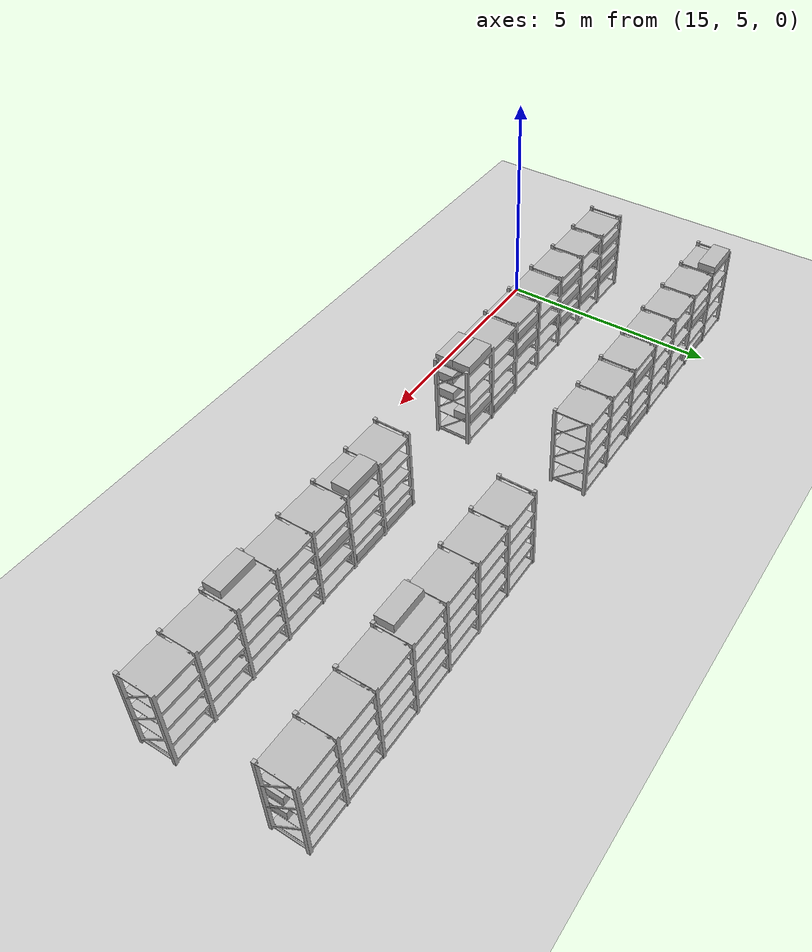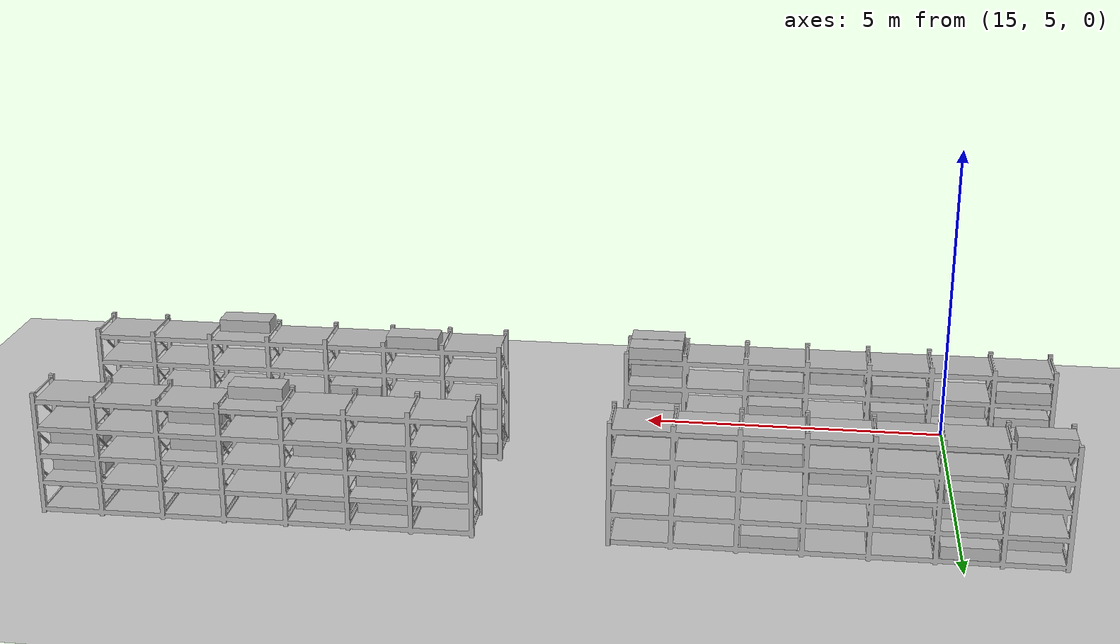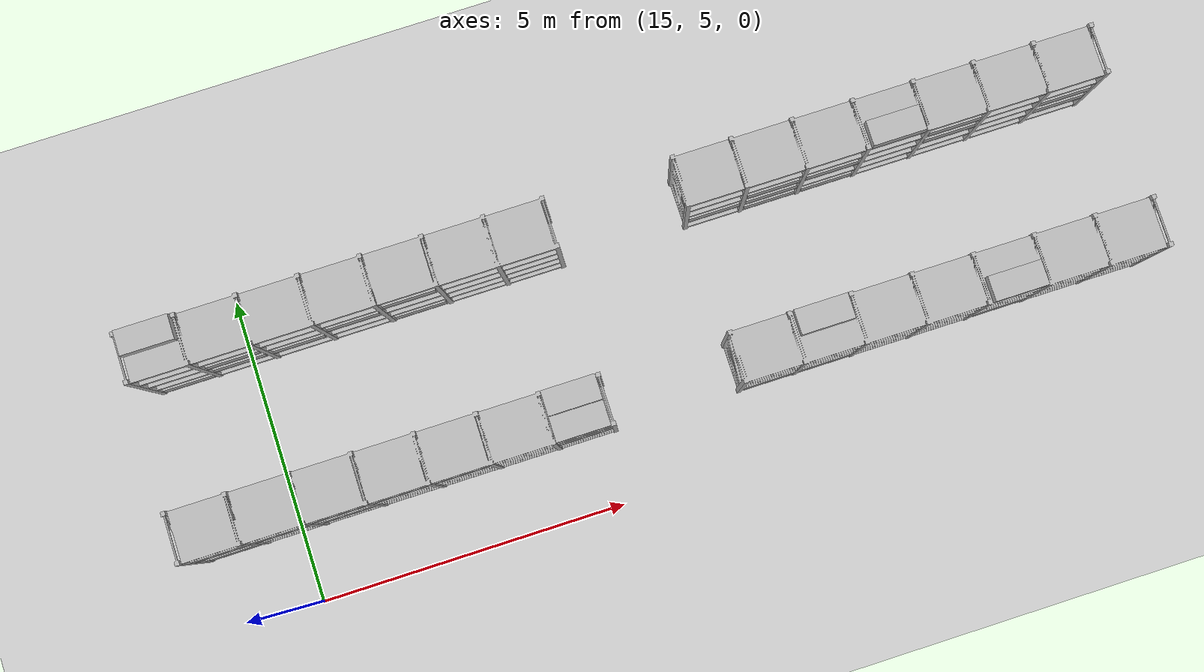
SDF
<sdf version="1.6">
 <world name="default">
  <model name="ground_plane">
   <static>1</static>
   <link name="link">
    <collision name="collision">
     <geometry><plane><normal>0 0 1</normal><size>100 100</size></plane></geometry>
     <surface><friction><ode><mu>100</mu><mu2>50</mu2></ode></friction></surface>
    </collision>
    <visual name="visual">
     <cast_shadows>0</cast_shadows>
     <geometry><plane><normal>0 0 1</normal><size>100 100</size></plane></geometry>
     <material>
      <script><uri>file://media/materials/scripts/gazebo.material</uri><name>Gazebo/Grey</name></script>
     </material>
    </visual>
   </link>
  </model>
  <include>
   <name>rack_B4_0</name>
   <uri>model://warehouse_rack_5lvl_7bay</uri>
   <pose>25.662 6.5523 0 0 0 1.5708</pose>
  </include>
  <model name="box_B_089">
   <pose>26.634 6.3473 0.202 0 0 1.5708</pose>
   <link name="link">
    <inertial>
     <mass>4.0</mass>
     <inertia><ixx>0.25417</ixx><iyy>0.06667</iyy><izz>0.29417</izz><ixy>0</ixy><ixz>0</ixz><iyz>0</iyz></inertia>
    </inertial>
    <collision name="collision">
     <geometry><box><size>0.4 0.85 0.2</size></box></geometry>
     <surface><friction><ode><mu>1.0</mu><mu2>1.0</mu2></ode></friction></surface>
    </collision>
    <visual name="visual">
     <cast_shadows>0</cast_shadows>
     <geometry><box><size>0.4 0.85 0.2</size></box></geometry>
     <material>
      <script>
       <uri>model://labeled_boxes/materials/scripts</uri>
       <uri>model://labeled_boxes/materials/textures</uri>
       <name>LabeledBox/B-089</name>
      </script>
     </material>
    </visual>
   </link>
  </model>
  <model name="box_B_090">
   <pose>26.634 6.3473 2.002 0 0 1.5708</pose>
   <link name="link">
    <inertial>
     <mass>4.0</mass>
     <inertia><ixx>0.25417</ixx><iyy>0.06667</iyy><izz>0.29417</izz><ixy>0</ixy><ixz>0</ixz><iyz>0</iyz></inertia>
    </inertial>
    <collision name="collision">
     <geometry><box><size>0.4 0.85 0.2</size></box></geometry>
     <surface><friction><ode><mu>1.0</mu><mu2>1.0</mu2></ode></friction></surface>
    </collision>
    <visual name="visual">
     <cast_shadows>0</cast_shadows>
     <geometry><box><size>0.4 0.85 0.2</size></box></geometry>
     <material>
      <script>
       <uri>model://labeled_boxes/materials/scripts</uri>
       <uri>model://labeled_boxes/materials/textures</uri>
       <name>LabeledBox/B-090</name>
      </script>
     </material>
    </visual>
   </link>
  </model>
  <model name="box_B_091">
   <pose>24.691 6.7573 1.102 0 0 1.5708</pose>
   <link name="link">
    <inertial>
     <mass>4.0</mass>
     <inertia><ixx>0.25417</ixx><iyy>0.06667</iyy><izz>0.29417</izz><ixy>0</ixy><ixz>0</ixz><iyz>0</iyz></inertia>
    </inertial>
    <collision name="collision">
     <geometry><box><size>0.4 0.85 0.2</size></box></geometry>
     <surface><friction><ode><mu>1.0</mu><mu2>1.0</mu2></ode></friction></surface>
    </collision>
    <visual name="visual">
     <cast_shadows>0</cast_shadows>
     <geometry><box><size>0.4 0.85 0.2</size></box></geometry>
     <material>
      <script>
       <uri>model://labeled_boxes/materials/scripts</uri>
       <uri>model://labeled_boxes/materials/textures</uri>
       <name>LabeledBox/B-091</name>
      </script>
     </material>
    </visual>
   </link>
  </model>
  <model name="box_B_092">
   <pose>23.72 6.3473 0.202 0 0 1.5708</pose>
   <link name="link">
    <inertial>
     <mass>4.0</mass>
     <inertia><ixx>0.25417</ixx><iyy>0.06667</iyy><izz>0.29417</izz><ixy>0</ixy><ixz>0</ixz><iyz>0</iyz></inertia>
    </inertial>
    <collision name="collision">
     <geometry><box><size>0.4 0.85 0.2</size></box></geometry>
     <surface><friction><ode><mu>1.0</mu><mu2>1.0</mu2></ode></friction></surface>
    </collision>
    <visual name="visual">
     <cast_shadows>0</cast_shadows>
     <geometry><box><size>0.4 0.85 0.2</size></box></geometry>
     <material>
      <script>
       <uri>model://labeled_boxes/materials/scripts</uri>
       <uri>model://labeled_boxes/materials/textures</uri>
       <name>LabeledBox/B-092</name>
      </script>
     </material>
    </visual>
   </link>
  </model>
  <model name="box_B_093">
   <pose>23.72 6.7573 0.202 0 0 1.5708</pose>
   <link name="link">
    <inertial>
     <mass>4.0</mass>
     <inertia><ixx>0.25417</ixx><iyy>0.06667</iyy><izz>0.29417</izz><ixy>0</ixy><ixz>0</ixz><iyz>0</iyz></inertia>
    </inertial>
    <collision name="collision">
     <geometry><box><size>0.4 0.85 0.2</size></box></geometry>
     <surface><friction><ode><mu>1.0</mu><mu2>1.0</mu2></ode></friction></surface>
    </collision>
    <visual name="visual">
     <cast_shadows>0</cast_shadows>
     <geometry><box><size>0.4 0.85 0.2</size></box></geometry>
     <material>
      <script>
       <uri>model://labeled_boxes/materials/scripts</uri>
       <uri>model://labeled_boxes/materials/textures</uri>
       <name>LabeledBox/B-093</name>
      </script>
     </material>
    </visual>
   </link>
  </model>
  <model name="box_B_094">
   <pose>23.72 6.7573 2.002 0 0 1.5708</pose>
   <link name="link">
    <inertial>
     <mass>4.0</mass>
     <inertia><ixx>0.25417</ixx><iyy>0.06667</iyy><izz>0.29417</izz><ixy>0</ixy><ixz>0</ixz><iyz>0</iyz></inertia>
    </inertial>
    <collision name="collision">
     <geometry><box><size>0.4 0.85 0.2</size></box></geometry>
     <surface><friction><ode><mu>1.0</mu><mu2>1.0</mu2></ode></friction></surface>
    </collision>
    <visual name="visual">
     <cast_shadows>0</cast_shadows>
     <geometry><box><size>0.4 0.85 0.2</size></box></geometry>
     <material>
      <script>
       <uri>model://labeled_boxes/materials/scripts</uri>
       <uri>model://labeled_boxes/materials/textures</uri>
       <name>LabeledBox/B-094</name>
      </script>
     </material>
    </visual>
   </link>
  </model>
  <model name="box_B_095">
   <pose>22.766 6.3473 0.202 0 0 1.5708</pose>
   <link name="link">
    <inertial>
     <mass>4.0</mass>
     <inertia><ixx>0.25417</ixx><iyy>0.06667</iyy><izz>0.29417</izz><ixy>0</ixy><ixz>0</ixz><iyz>0</iyz></inertia>
    </inertial>
    <collision name="collision">
     <geometry><box><size>0.4 0.85 0.2</size></box></geometry>
     <surface><friction><ode><mu>1.0</mu><mu2>1.0</mu2></ode></friction></surface>
    </collision>
    <visual name="visual">
     <cast_shadows>0</cast_shadows>
     <geometry><box><size>0.4 0.85 0.2</size></box></geometry>
     <material>
      <script>
       <uri>model://labeled_boxes/materials/scripts</uri>
       <uri>model://labeled_boxes/materials/textures</uri>
       <name>LabeledBox/B-095</name>
      </script>
     </material>
    </visual>
   </link>
  </model>
  <model name="box_B_096">
   <pose>22.766 6.7573 0.202 0 0 1.5708</pose>
   <link name="link">
    <inertial>
     <mass>4.0</mass>
     <inertia><ixx>0.25417</ixx><iyy>0.06667</iyy><izz>0.29417</izz><ixy>0</ixy><ixz>0</ixz><iyz>0</iyz></inertia>
    </inertial>
    <collision name="collision">
     <geometry><box><size>0.4 0.85 0.2</size></box></geometry>
     <surface><friction><ode><mu>1.0</mu><mu2>1.0</mu2></ode></friction></surface>
    </collision>
    <visual name="visual">
     <cast_shadows>0</cast_shadows>
     <geometry><box><size>0.4 0.85 0.2</size></box></geometry>
     <material>
      <script>
       <uri>model://labeled_boxes/materials/scripts</uri>
       <uri>model://labeled_boxes/materials/textures</uri>
       <name>LabeledBox/B-096</name>
      </script>
     </material>
    </visual>
   </link>
  </model>
  <include>
   <name>rack_B4_1</name>
   <uri>model://warehouse_rack_5lvl_7bay</uri>
   <pose>16.862 6.5523 0 0 0 1.5708</pose>
  </include>
  <model name="box_B_097">
   <pose>19.759 6.7573 0.652 0 0 1.5708</pose>
   <link name="link">
    <inertial>
     <mass>4.0</mass>
     <inertia><ixx>0.25417</ixx><iyy>0.06667</iyy><izz>0.29417</izz><ixy>0</ixy><ixz>0</ixz><iyz>0</iyz></inertia>
    </inertial>
    <collision name="collision">
     <geometry><box><size>0.4 0.85 0.2</size></box></geometry>
     <surface><friction><ode><mu>1.0</mu><mu2>1.0</mu2></ode></friction></surface>
    </collision>
    <visual name="visual">
     <cast_shadows>0</cast_shadows>
     <geometry><box><size>0.4 0.85 0.2</size></box></geometry>
     <material>
      <script>
       <uri>model://labeled_boxes/materials/scripts</uri>
       <uri>model://labeled_boxes/materials/textures</uri>
       <name>LabeledBox/B-097</name>
      </script>
     </material>
    </visual>
   </link>
  </model>
  <model name="box_B_098">
   <pose>19.759 6.3473 1.102 0 0 1.5708</pose>
   <link name="link">
    <inertial>
     <mass>4.0</mass>
     <inertia><ixx>0.25417</ixx><iyy>0.06667</iyy><izz>0.29417</izz><ixy>0</ixy><ixz>0</ixz><iyz>0</iyz></inertia>
    </inertial>
    <collision name="collision">
     <geometry><box><size>0.4 0.85 0.2</size></box></geometry>
     <surface><friction><ode><mu>1.0</mu><mu2>1.0</mu2></ode></friction></surface>
    </collision>
    <visual name="visual">
     <cast_shadows>0</cast_shadows>
     <geometry><box><size>0.4 0.85 0.2</size></box></geometry>
     <material>
      <script>
       <uri>model://labeled_boxes/materials/scripts</uri>
       <uri>model://labeled_boxes/materials/textures</uri>
       <name>LabeledBox/B-098</name>
      </script>
     </material>
    </visual>
   </link>
  </model>
  <model name="box_B_099">
   <pose>19.759 6.3473 1.552 0 0 1.5708</pose>
   <link name="link">
    <inertial>
     <mass>4.0</mass>
     <inertia><ixx>0.25417</ixx><iyy>0.06667</iyy><izz>0.29417</izz><ixy>0</ixy><ixz>0</ixz><iyz>0</iyz></inertia>
    </inertial>
    <collision name="collision">
     <geometry><box><size>0.4 0.85 0.2</size></box></geometry>
     <surface><friction><ode><mu>1.0</mu><mu2>1.0</mu2></ode></friction></surface>
    </collision>
    <visual name="visual">
     <cast_shadows>0</cast_shadows>
     <geometry><box><size>0.4 0.85 0.2</size></box></geometry>
     <material>
      <script>
       <uri>model://labeled_boxes/materials/scripts</uri>
       <uri>model://labeled_boxes/materials/textures</uri>
       <name>LabeledBox/B-099</name>
      </script>
     </material>
    </visual>
   </link>
  </model>
  <model name="box_B_100">
   <pose>19.759 6.3473 2.002 0 0 1.5708</pose>
   <link name="link">
    <inertial>
     <mass>4.0</mass>
     <inertia><ixx>0.25417</ixx><iyy>0.06667</iyy><izz>0.29417</izz><ixy>0</ixy><ixz>0</ixz><iyz>0</iyz></inertia>
    </inertial>
    <collision name="collision">
     <geometry><box><size>0.4 0.85 0.2</size></box></geometry>
     <surface><friction><ode><mu>1.0</mu><mu2>1.0</mu2></ode></friction></surface>
    </collision>
    <visual name="visual">
     <cast_shadows>0</cast_shadows>
     <geometry><box><size>0.4 0.85 0.2</size></box></geometry>
     <material>
      <script>
       <uri>model://labeled_boxes/materials/scripts</uri>
       <uri>model://labeled_boxes/materials/textures</uri>
       <name>LabeledBox/B-100</name>
      </script>
     </material>
    </visual>
   </link>
  </model>
  <model name="box_B_101">
   <pose>19.759 6.7573 2.002 0 0 1.5708</pose>
   <link name="link">
    <inertial>
     <mass>4.0</mass>
     <inertia><ixx>0.25417</ixx><iyy>0.06667</iyy><izz>0.29417</izz><ixy>0</ixy><ixz>0</ixz><iyz>0</iyz></inertia>
    </inertial>
    <collision name="collision">
     <geometry><box><size>0.4 0.85 0.2</size></box></geometry>
     <surface><friction><ode><mu>1.0</mu><mu2>1.0</mu2></ode></friction></surface>
    </collision>
    <visual name="visual">
     <cast_shadows>0</cast_shadows>
     <geometry><box><size>0.4 0.85 0.2</size></box></geometry>
     <material>
      <script>
       <uri>model://labeled_boxes/materials/scripts</uri>
       <uri>model://labeled_boxes/materials/textures</uri>
       <name>LabeledBox/B-101</name>
      </script>
     </material>
    </visual>
   </link>
  </model>
  <model name="box_B_102">
   <pose>18.805 6.7573 0.202 0 0 1.5708</pose>
   <link name="link">
    <inertial>
     <mass>4.0</mass>
     <inertia><ixx>0.25417</ixx><iyy>0.06667</iyy><izz>0.29417</izz><ixy>0</ixy><ixz>0</ixz><iyz>0</iyz></inertia>
    </inertial>
    <collision name="collision">
     <geometry><box><size>0.4 0.85 0.2</size></box></geometry>
     <surface><friction><ode><mu>1.0</mu><mu2>1.0</mu2></ode></friction></surface>
    </collision>
    <visual name="visual">
     <cast_shadows>0</cast_shadows>
     <geometry><box><size>0.4 0.85 0.2</size></box></geometry>
     <material>
      <script>
       <uri>model://labeled_boxes/materials/scripts</uri>
       <uri>model://labeled_boxes/materials/textures</uri>
       <name>LabeledBox/B-102</name>
      </script>
     </material>
    </visual>
   </link>
  </model>
  <model name="box_B_103">
   <pose>17.834 6.7573 1.102 0 0 1.5708</pose>
   <link name="link">
    <inertial>
     <mass>4.0</mass>
     <inertia><ixx>0.25417</ixx><iyy>0.06667</iyy><izz>0.29417</izz><ixy>0</ixy><ixz>0</ixz><iyz>0</iyz></inertia>
    </inertial>
    <collision name="collision">
     <geometry><box><size>0.4 0.85 0.2</size></box></geometry>
     <surface><friction><ode><mu>1.0</mu><mu2>1.0</mu2></ode></friction></surface>
    </collision>
    <visual name="visual">
     <cast_shadows>0</cast_shadows>
     <geometry><box><size>0.4 0.85 0.2</size></box></geometry>
     <material>
      <script>
       <uri>model://labeled_boxes/materials/scripts</uri>
       <uri>model://labeled_boxes/materials/textures</uri>
       <name>LabeledBox/B-103</name>
      </script>
     </material>
    </visual>
   </link>
  </model>
  <model name="box_B_104">
   <pose>17.834 6.3473 1.552 0 0 1.5708</pose>
   <link name="link">
    <inertial>
     <mass>4.0</mass>
     <inertia><ixx>0.25417</ixx><iyy>0.06667</iyy><izz>0.29417</izz><ixy>0</ixy><ixz>0</ixz><iyz>0</iyz></inertia>
    </inertial>
    <collision name="collision">
     <geometry><box><size>0.4 0.85 0.2</size></box></geometry>
     <surface><friction><ode><mu>1.0</mu><mu2>1.0</mu2></ode></friction></surface>
    </collision>
    <visual name="visual">
     <cast_shadows>0</cast_shadows>
     <geometry><box><size>0.4 0.85 0.2</size></box></geometry>
     <material>
      <script>
       <uri>model://labeled_boxes/materials/scripts</uri>
       <uri>model://labeled_boxes/materials/textures</uri>
       <name>LabeledBox/B-104</name>
      </script>
     </material>
    </visual>
   </link>
  </model>
  <model name="box_B_105">
   <pose>17.834 6.7573 1.552 0 0 1.5708</pose>
   <link name="link">
    <inertial>
     <mass>4.0</mass>
     <inertia><ixx>0.25417</ixx><iyy>0.06667</iyy><izz>0.29417</izz><ixy>0</ixy><ixz>0</ixz><iyz>0</iyz></inertia>
    </inertial>
    <collision name="collision">
     <geometry><box><size>0.4 0.85 0.2</size></box></geometry>
     <surface><friction><ode><mu>1.0</mu><mu2>1.0</mu2></ode></friction></surface>
    </collision>
    <visual name="visual">
     <cast_shadows>0</cast_shadows>
     <geometry><box><size>0.4 0.85 0.2</size></box></geometry>
     <material>
      <script>
       <uri>model://labeled_boxes/materials/scripts</uri>
       <uri>model://labeled_boxes/materials/textures</uri>
       <name>LabeledBox/B-105</name>
      </script>
     </material>
    </visual>
   </link>
  </model>
  <model name="box_B_106">
   <pose>16.862 6.3473 1.552 0 0 1.5708</pose>
   <link name="link">
    <inertial>
     <mass>4.0</mass>
     <inertia><ixx>0.25417</ixx><iyy>0.06667</iyy><izz>0.29417</izz><ixy>0</ixy><ixz>0</ixz><iyz>0</iyz></inertia>
    </inertial>
    <collision name="collision">
     <geometry><box><size>0.4 0.85 0.2</size></box></geometry>
     <surface><friction><ode><mu>1.0</mu><mu2>1.0</mu2></ode></friction></surface>
    </collision>
    <visual name="visual">
     <cast_shadows>0</cast_shadows>
     <geometry><box><size>0.4 0.85 0.2</size></box></geometry>
     <material>
      <script>
       <uri>model://labeled_boxes/materials/scripts</uri>
       <uri>model://labeled_boxes/materials/textures</uri>
       <name>LabeledBox/B-106</name>
      </script>
     </material>
    </visual>
   </link>
  </model>
  <model name="box_B_107">
   <pose>15.891 6.3473 0.652 0 0 1.5708</pose>
   <link name="link">
    <inertial>
     <mass>4.0</mass>
     <inertia><ixx>0.25417</ixx><iyy>0.06667</iyy><izz>0.29417</izz><ixy>0</ixy><ixz>0</ixz><iyz>0</iyz></inertia>
    </inertial>
    <collision name="collision">
     <geometry><box><size>0.4 0.85 0.2</size></box></geometry>
     <surface><friction><ode><mu>1.0</mu><mu2>1.0</mu2></ode></friction></surface>
    </collision>
    <visual name="visual">
     <cast_shadows>0</cast_shadows>
     <geometry><box><size>0.4 0.85 0.2</size></box></geometry>
     <material>
      <script>
       <uri>model://labeled_boxes/materials/scripts</uri>
       <uri>model://labeled_boxes/materials/textures</uri>
       <name>LabeledBox/B-107</name>
      </script>
     </material>
    </visual>
   </link>
  </model>
  <model name="box_B_108">
   <pose>15.891 6.7573 0.652 0 0 1.5708</pose>
   <link name="link">
    <inertial>
     <mass>4.0</mass>
     <inertia><ixx>0.25417</ixx><iyy>0.06667</iyy><izz>0.29417</izz><ixy>0</ixy><ixz>0</ixz><iyz>0</iyz></inertia>
    </inertial>
    <collision name="collision">
     <geometry><box><size>0.4 0.85 0.2</size></box></geometry>
     <surface><friction><ode><mu>1.0</mu><mu2>1.0</mu2></ode></friction></surface>
    </collision>
    <visual name="visual">
     <cast_shadows>0</cast_shadows>
     <geometry><box><size>0.4 0.85 0.2</size></box></geometry>
     <material>
      <script>
       <uri>model://labeled_boxes/materials/scripts</uri>
       <uri>model://labeled_boxes/materials/textures</uri>
       <name>LabeledBox/B-108</name>
      </script>
     </material>
    </visual>
   </link>
  </model>
  <model name="box_B_109">
   <pose>15.891 6.7573 1.102 0 0 1.5708</pose>
   <link name="link">
    <inertial>
     <mass>4.0</mass>
     <inertia><ixx>0.25417</ixx><iyy>0.06667</iyy><izz>0.29417</izz><ixy>0</ixy><ixz>0</ixz><iyz>0</iyz></inertia>
    </inertial>
    <collision name="collision">
     <geometry><box><size>0.4 0.85 0.2</size></box></geometry>
     <surface><friction><ode><mu>1.0</mu><mu2>1.0</mu2></ode></friction></surface>
    </collision>
    <visual name="visual">
     <cast_shadows>0</cast_shadows>
     <geometry><box><size>0.4 0.85 0.2</size></box></geometry>
     <material>
      <script>
       <uri>model://labeled_boxes/materials/scripts</uri>
       <uri>model://labeled_boxes/materials/textures</uri>
       <name>LabeledBox/B-109</name>
      </script>
     </material>
    </visual>
   </link>
  </model>
  <model name="box_B_110">
   <pose>15.891 6.3473 1.552 0 0 1.5708</pose>
   <link name="link">
    <inertial>
     <mass>4.0</mass>
     <inertia><ixx>0.25417</ixx><iyy>0.06667</iyy><izz>0.29417</izz><ixy>0</ixy><ixz>0</ixz><iyz>0</iyz></inertia>
    </inertial>
    <collision name="collision">
     <geometry><box><size>0.4 0.85 0.2</size></box></geometry>
     <surface><friction><ode><mu>1.0</mu><mu2>1.0</mu2></ode></friction></surface>
    </collision>
    <visual name="visual">
     <cast_shadows>0</cast_shadows>
     <geometry><box><size>0.4 0.85 0.2</size></box></geometry>
     <material>
      <script>
       <uri>model://labeled_boxes/materials/scripts</uri>
       <uri>model://labeled_boxes/materials/textures</uri>
       <name>LabeledBox/B-110</name>
      </script>
     </material>
    </visual>
   </link>
  </model>
  <model name="box_B_111">
   <pose>15.891 6.7573 1.552 0 0 1.5708</pose>
   <link name="link">
    <inertial>
     <mass>4.0</mass>
     <inertia><ixx>0.25417</ixx><iyy>0.06667</iyy><izz>0.29417</izz><ixy>0</ixy><ixz>0</ixz><iyz>0</iyz></inertia>
    </inertial>
    <collision name="collision">
     <geometry><box><size>0.4 0.85 0.2</size></box></geometry>
     <surface><friction><ode><mu>1.0</mu><mu2>1.0</mu2></ode></friction></surface>
    </collision>
    <visual name="visual">
     <cast_shadows>0</cast_shadows>
     <geometry><box><size>0.4 0.85 0.2</size></box></geometry>
     <material>
      <script>
       <uri>model://labeled_boxes/materials/scripts</uri>
       <uri>model://labeled_boxes/materials/textures</uri>
       <name>LabeledBox/B-111</name>
      </script>
     </material>
    </visual>
   </link>
  </model>
  <model name="box_B_112">
   <pose>14.92 6.7573 0.652 0 0 1.5708</pose>
   <link name="link">
    <inertial>
     <mass>4.0</mass>
     <inertia><ixx>0.25417</ixx><iyy>0.06667</iyy><izz>0.29417</izz><ixy>0</ixy><ixz>0</ixz><iyz>0</iyz></inertia>
    </inertial>
    <collision name="collision">
     <geometry><box><size>0.4 0.85 0.2</size></box></geometry>
     <surface><friction><ode><mu>1.0</mu><mu2>1.0</mu2></ode></friction></surface>
    </collision>
    <visual name="visual">
     <cast_shadows>0</cast_shadows>
     <geometry><box><size>0.4 0.85 0.2</size></box></geometry>
     <material>
      <script>
       <uri>model://labeled_boxes/materials/scripts</uri>
       <uri>model://labeled_boxes/materials/textures</uri>
       <name>LabeledBox/B-112</name>
      </script>
     </material>
    </visual>
   </link>
  </model>
  <model name="box_B_113">
   <pose>14.92 6.3473 1.102 0 0 1.5708</pose>
   <link name="link">
    <inertial>
     <mass>4.0</mass>
     <inertia><ixx>0.25417</ixx><iyy>0.06667</iyy><izz>0.29417</izz><ixy>0</ixy><ixz>0</ixz><iyz>0</iyz></inertia>
    </inertial>
    <collision name="collision">
     <geometry><box><size>0.4 0.85 0.2</size></box></geometry>
     <surface><friction><ode><mu>1.0</mu><mu2>1.0</mu2></ode></friction></surface>
    </collision>
    <visual name="visual">
     <cast_shadows>0</cast_shadows>
     <geometry><box><size>0.4 0.85 0.2</size></box></geometry>
     <material>
      <script>
       <uri>model://labeled_boxes/materials/scripts</uri>
       <uri>model://labeled_boxes/materials/textures</uri>
       <name>LabeledBox/B-113</name>
      </script>
     </material>
    </visual>
   </link>
  </model>
  <model name="box_B_114">
   <pose>13.966 6.3473 0.202 0 0 1.5708</pose>
   <link name="link">
    <inertial>
     <mass>4.0</mass>
     <inertia><ixx>0.25417</ixx><iyy>0.06667</iyy><izz>0.29417</izz><ixy>0</ixy><ixz>0</ixz><iyz>0</iyz></inertia>
    </inertial>
    <collision name="collision">
     <geometry><box><size>0.4 0.85 0.2</size></box></geometry>
     <surface><friction><ode><mu>1.0</mu><mu2>1.0</mu2></ode></friction></surface>
    </collision>
    <visual name="visual">
     <cast_shadows>0</cast_shadows>
     <geometry><box><size>0.4 0.85 0.2</size></box></geometry>
     <material>
      <script>
       <uri>model://labeled_boxes/materials/scripts</uri>
       <uri>model://labeled_boxes/materials/textures</uri>
       <name>LabeledBox/B-114</name>
      </script>
     </material>
    </visual>
   </link>
  </model>
  <model name="box_B_115">
   <pose>13.966 6.7573 0.652 0 0 1.5708</pose>
   <link name="link">
    <inertial>
     <mass>4.0</mass>
     <inertia><ixx>0.25417</ixx><iyy>0.06667</iyy><izz>0.29417</izz><ixy>0</ixy><ixz>0</ixz><iyz>0</iyz></inertia>
    </inertial>
    <collision name="collision">
     <geometry><box><size>0.4 0.85 0.2</size></box></geometry>
     <surface><friction><ode><mu>1.0</mu><mu2>1.0</mu2></ode></friction></surface>
    </collision>
    <visual name="visual">
     <cast_shadows>0</cast_shadows>
     <geometry><box><size>0.4 0.85 0.2</size></box></geometry>
     <material>
      <script>
       <uri>model://labeled_boxes/materials/scripts</uri>
       <uri>model://labeled_boxes/materials/textures</uri>
       <name>LabeledBox/B-115</name>
      </script>
     </material>
    </visual>
   </link>
  </model>
  <model name="box_B_116">
   <pose>13.966 6.3473 1.102 0 0 1.5708</pose>
   <link name="link">
    <inertial>
     <mass>4.0</mass>
     <inertia><ixx>0.25417</ixx><iyy>0.06667</iyy><izz>0.29417</izz><ixy>0</ixy><ixz>0</ixz><iyz>0</iyz></inertia>
    </inertial>
    <collision name="collision">
     <geometry><box><size>0.4 0.85 0.2</size></box></geometry>
     <surface><friction><ode><mu>1.0</mu><mu2>1.0</mu2></ode></friction></surface>
    </collision>
    <visual name="visual">
     <cast_shadows>0</cast_shadows>
     <geometry><box><size>0.4 0.85 0.2</size></box></geometry>
     <material>
      <script>
       <uri>model://labeled_boxes/materials/scripts</uri>
       <uri>model://labeled_boxes/materials/textures</uri>
       <name>LabeledBox/B-116</name>
      </script>
     </material>
    </visual>
   </link>
  </model>
  <model name="box_B_117">
   <pose>13.966 6.7573 1.102 0 0 1.5708</pose>
   <link name="link">
    <inertial>
     <mass>4.0</mass>
     <inertia><ixx>0.25417</ixx><iyy>0.06667</iyy><izz>0.29417</izz><ixy>0</ixy><ixz>0</ixz><iyz>0</iyz></inertia>
    </inertial>
    <collision name="collision">
     <geometry><box><size>0.4 0.85 0.2</size></box></geometry>
     <surface><friction><ode><mu>1.0</mu><mu2>1.0</mu2></ode></friction></surface>
    </collision>
    <visual name="visual">
     <cast_shadows>0</cast_shadows>
     <geometry><box><size>0.4 0.85 0.2</size></box></geometry>
     <material>
      <script>
       <uri>model://labeled_boxes/materials/scripts</uri>
       <uri>model://labeled_boxes/materials/textures</uri>
       <name>LabeledBox/B-117</name>
      </script>
     </material>
    </visual>
   </link>
  </model>
  <model name="box_B_118">
   <pose>13.966 6.7573 1.552 0 0 1.5708</pose>
   <link name="link">
    <inertial>
     <mass>4.0</mass>
     <inertia><ixx>0.25417</ixx><iyy>0.06667</iyy><izz>0.29417</izz><ixy>0</ixy><ixz>0</ixz><iyz>0</iyz></inertia>
    </inertial>
    <collision name="collision">
     <geometry><box><size>0.4 0.85 0.2</size></box></geometry>
     <surface><friction><ode><mu>1.0</mu><mu2>1.0</mu2></ode></friction></surface>
    </collision>
    <visual name="visual">
     <cast_shadows>0</cast_shadows>
     <geometry><box><size>0.4 0.85 0.2</size></box></geometry>
     <material>
      <script>
       <uri>model://labeled_boxes/materials/scripts</uri>
       <uri>model://labeled_boxes/materials/textures</uri>
       <name>LabeledBox/B-118</name>
      </script>
     </material>
    </visual>
   </link>
  </model>
  <include>
   <name>rack_B5_0</name>
   <uri>model://warehouse_rack_5lvl_7bay</uri>
   <pose>25.662 9.3523 0 0 0 1.5708</pose>
  </include>
  <model name="box_B_119">
   <pose>28.559 9.1473 0.652 0 0 1.5708</pose>
   <link name="link">
    <inertial>
     <mass>4.0</mass>
     <inertia><ixx>0.25417</ixx><iyy>0.06667</iyy><izz>0.29417</izz><ixy>0</ixy><ixz>0</ixz><iyz>0</iyz></inertia>
    </inertial>
    <collision name="collision">
     <geometry><box><size>0.4 0.85 0.2</size></box></geometry>
     <surface><friction><ode><mu>1.0</mu><mu2>1.0</mu2></ode></friction></surface>
    </collision>
    <visual name="visual">
     <cast_shadows>0</cast_shadows>
     <geometry><box><size>0.4 0.85 0.2</size></box></geometry>
     <material>
      <script>
       <uri>model://labeled_boxes/materials/scripts</uri>
       <uri>model://labeled_boxes/materials/textures</uri>
       <name>LabeledBox/B-119</name>
      </script>
     </material>
    </visual>
   </link>
  </model>
  <model name="box_B_120">
   <pose>28.559 9.1473 1.102 0 0 1.5708</pose>
   <link name="link">
    <inertial>
     <mass>4.0</mass>
     <inertia><ixx>0.25417</ixx><iyy>0.06667</iyy><izz>0.29417</izz><ixy>0</ixy><ixz>0</ixz><iyz>0</iyz></inertia>
    </inertial>
    <collision name="collision">
     <geometry><box><size>0.4 0.85 0.2</size></box></geometry>
     <surface><friction><ode><mu>1.0</mu><mu2>1.0</mu2></ode></friction></surface>
    </collision>
    <visual name="visual">
     <cast_shadows>0</cast_shadows>
     <geometry><box><size>0.4 0.85 0.2</size></box></geometry>
     <material>
      <script>
       <uri>model://labeled_boxes/materials/scripts</uri>
       <uri>model://labeled_boxes/materials/textures</uri>
       <name>LabeledBox/B-120</name>
      </script>
     </material>
    </visual>
   </link>
  </model>
  <model name="box_B_123">
   <pose>26.634 9.1473 1.102 0 0 1.5708</pose>
   <link name="link">
    <inertial>
     <mass>4.0</mass>
     <inertia><ixx>0.25417</ixx><iyy>0.06667</iyy><izz>0.29417</izz><ixy>0</ixy><ixz>0</ixz><iyz>0</iyz></inertia>
    </inertial>
    <collision name="collision">
     <geometry><box><size>0.4 0.85 0.2</size></box></geometry>
     <surface><friction><ode><mu>1.0</mu><mu2>1.0</mu2></ode></friction></surface>
    </collision>
    <visual name="visual">
     <cast_shadows>0</cast_shadows>
     <geometry><box><size>0.4 0.85 0.2</size></box></geometry>
     <material>
      <script>
       <uri>model://labeled_boxes/materials/scripts</uri>
       <uri>model://labeled_boxes/materials/textures</uri>
       <name>LabeledBox/B-123</name>
      </script>
     </material>
    </visual>
   </link>
  </model>
  <model name="box_B_124">
   <pose>26.634 9.1473 1.552 0 0 1.5708</pose>
   <link name="link">
    <inertial>
     <mass>4.0</mass>
     <inertia><ixx>0.25417</ixx><iyy>0.06667</iyy><izz>0.29417</izz><ixy>0</ixy><ixz>0</ixz><iyz>0</iyz></inertia>
    </inertial>
    <collision name="collision">
     <geometry><box><size>0.4 0.85 0.2</size></box></geometry>
     <surface><friction><ode><mu>1.0</mu><mu2>1.0</mu2></ode></friction></surface>
    </collision>
    <visual name="visual">
     <cast_shadows>0</cast_shadows>
     <geometry><box><size>0.4 0.85 0.2</size></box></geometry>
     <material>
      <script>
       <uri>model://labeled_boxes/materials/scripts</uri>
       <uri>model://labeled_boxes/materials/textures</uri>
       <name>LabeledBox/B-124</name>
      </script>
     </material>
    </visual>
   </link>
  </model>
  <model name="box_B_127">
   <pose>25.662 9.1473 2.002 0 0 1.5708</pose>
   <link name="link">
    <inertial>
     <mass>4.0</mass>
     <inertia><ixx>0.25417</ixx><iyy>0.06667</iyy><izz>0.29417</izz><ixy>0</ixy><ixz>0</ixz><iyz>0</iyz></inertia>
    </inertial>
    <collision name="collision">
     <geometry><box><size>0.4 0.85 0.2</size></box></geometry>
     <surface><friction><ode><mu>1.0</mu><mu2>1.0</mu2></ode></friction></surface>
    </collision>
    <visual name="visual">
     <cast_shadows>0</cast_shadows>
     <geometry><box><size>0.4 0.85 0.2</size></box></geometry>
     <material>
      <script>
       <uri>model://labeled_boxes/materials/scripts</uri>
       <uri>model://labeled_boxes/materials/textures</uri>
       <name>LabeledBox/B-127</name>
      </script>
     </material>
    </visual>
   </link>
  </model>
  <model name="box_B_128">
   <pose>24.691 9.1473 0.202 0 0 1.5708</pose>
   <link name="link">
    <inertial>
     <mass>4.0</mass>
     <inertia><ixx>0.25417</ixx><iyy>0.06667</iyy><izz>0.29417</izz><ixy>0</ixy><ixz>0</ixz><iyz>0</iyz></inertia>
    </inertial>
    <collision name="collision">
     <geometry><box><size>0.4 0.85 0.2</size></box></geometry>
     <surface><friction><ode><mu>1.0</mu><mu2>1.0</mu2></ode></friction></surface>
    </collision>
    <visual name="visual">
     <cast_shadows>0</cast_shadows>
     <geometry><box><size>0.4 0.85 0.2</size></box></geometry>
     <material>
      <script>
       <uri>model://labeled_boxes/materials/scripts</uri>
       <uri>model://labeled_boxes/materials/textures</uri>
       <name>LabeledBox/B-128</name>
      </script>
     </material>
    </visual>
   </link>
  </model>
  <model name="box_B_129">
   <pose>24.691 9.1473 1.102 0 0 1.5708</pose>
   <link name="link">
    <inertial>
     <mass>4.0</mass>
     <inertia><ixx>0.25417</ixx><iyy>0.06667</iyy><izz>0.29417</izz><ixy>0</ixy><ixz>0</ixz><iyz>0</iyz></inertia>
    </inertial>
    <collision name="collision">
     <geometry><box><size>0.4 0.85 0.2</size></box></geometry>
     <surface><friction><ode><mu>1.0</mu><mu2>1.0</mu2></ode></friction></surface>
    </collision>
    <visual name="visual">
     <cast_shadows>0</cast_shadows>
     <geometry><box><size>0.4 0.85 0.2</size></box></geometry>
     <material>
      <script>
       <uri>model://labeled_boxes/materials/scripts</uri>
       <uri>model://labeled_boxes/materials/textures</uri>
       <name>LabeledBox/B-129</name>
      </script>
     </material>
    </visual>
   </link>
  </model>
  <model name="box_B_130">
   <pose>23.72 9.1473 0.202 0 0 1.5708</pose>
   <link name="link">
    <inertial>
     <mass>4.0</mass>
     <inertia><ixx>0.25417</ixx><iyy>0.06667</iyy><izz>0.29417</izz><ixy>0</ixy><ixz>0</ixz><iyz>0</iyz></inertia>
    </inertial>
    <collision name="collision">
     <geometry><box><size>0.4 0.85 0.2</size></box></geometry>
     <surface><friction><ode><mu>1.0</mu><mu2>1.0</mu2></ode></friction></surface>
    </collision>
    <visual name="visual">
     <cast_shadows>0</cast_shadows>
     <geometry><box><size>0.4 0.85 0.2</size></box></geometry>
     <material>
      <script>
       <uri>model://labeled_boxes/materials/scripts</uri>
       <uri>model://labeled_boxes/materials/textures</uri>
       <name>LabeledBox/B-130</name>
      </script>
     </material>
    </visual>
   </link>
  </model>
  <model name="box_B_131">
   <pose>23.72 9.1473 0.652 0 0 1.5708</pose>
   <link name="link">
    <inertial>
     <mass>4.0</mass>
     <inertia><ixx>0.25417</ixx><iyy>0.06667</iyy><izz>0.29417</izz><ixy>0</ixy><ixz>0</ixz><iyz>0</iyz></inertia>
    </inertial>
    <collision name="collision">
     <geometry><box><size>0.4 0.85 0.2</size></box></geometry>
     <surface><friction><ode><mu>1.0</mu><mu2>1.0</mu2></ode></friction></surface>
    </collision>
    <visual name="visual">
     <cast_shadows>0</cast_shadows>
     <geometry><box><size>0.4 0.85 0.2</size></box></geometry>
     <material>
      <script>
       <uri>model://labeled_boxes/materials/scripts</uri>
       <uri>model://labeled_boxes/materials/textures</uri>
       <name>LabeledBox/B-131</name>
      </script>
     </material>
    </visual>
   </link>
  </model>
  <model name="box_B_133">
   <pose>23.72 9.1473 1.102 0 0 1.5708</pose>
   <link name="link">
    <inertial>
     <mass>4.0</mass>
     <inertia><ixx>0.25417</ixx><iyy>0.06667</iyy><izz>0.29417</izz><ixy>0</ixy><ixz>0</ixz><iyz>0</iyz></inertia>
    </inertial>
    <collision name="collision">
     <geometry><box><size>0.4 0.85 0.2</size></box></geometry>
     <surface><friction><ode><mu>1.0</mu><mu2>1.0</mu2></ode></friction></surface>
    </collision>
    <visual name="visual">
     <cast_shadows>0</cast_shadows>
     <geometry><box><size>0.4 0.85 0.2</size></box></geometry>
     <material>
      <script>
       <uri>model://labeled_boxes/materials/scripts</uri>
       <uri>model://labeled_boxes/materials/textures</uri>
       <name>LabeledBox/B-133</name>
      </script>
     </material>
    </visual>
   </link>
  </model>
  <model name="box_B_135">
   <pose>22.766 9.1473 0.652 0 0 1.5708</pose>
   <link name="link">
    <inertial>
     <mass>4.0</mass>
     <inertia><ixx>0.25417</ixx><iyy>0.06667</iyy><izz>0.29417</izz><ixy>0</ixy><ixz>0</ixz><iyz>0</iyz></inertia>
    </inertial>
    <collision name="collision">
     <geometry><box><size>0.4 0.85 0.2</size></box></geometry>
     <surface><friction><ode><mu>1.0</mu><mu2>1.0</mu2></ode></friction></surface>
    </collision>
    <visual name="visual">
     <cast_shadows>0</cast_shadows>
     <geometry><box><size>0.4 0.85 0.2</size></box></geometry>
     <material>
      <script>
       <uri>model://labeled_boxes/materials/scripts</uri>
       <uri>model://labeled_boxes/materials/textures</uri>
       <name>LabeledBox/B-135</name>
      </script>
     </material>
    </visual>
   </link>
  </model>
  <include>
   <name>rack_B5_1</name>
   <uri>model://warehouse_rack_5lvl_7bay</uri>
   <pose>16.862 9.3523 0 0 0 1.5708</pose>
  </include>
  <model name="box_B_139">
   <pose>17.834 9.1473 0.202 0 0 1.5708</pose>
   <link name="link">
    <inertial>
     <mass>4.0</mass>
     <inertia><ixx>0.25417</ixx><iyy>0.06667</iyy><izz>0.29417</izz><ixy>0</ixy><ixz>0</ixz><iyz>0</iyz></inertia>
    </inertial>
    <collision name="collision">
     <geometry><box><size>0.4 0.85 0.2</size></box></geometry>
     <surface><friction><ode><mu>1.0</mu><mu2>1.0</mu2></ode></friction></surface>
    </collision>
    <visual name="visual">
     <cast_shadows>0</cast_shadows>
     <geometry><box><size>0.4 0.85 0.2</size></box></geometry>
     <material>
      <script>
       <uri>model://labeled_boxes/materials/scripts</uri>
       <uri>model://labeled_boxes/materials/textures</uri>
       <name>LabeledBox/B-139</name>
      </script>
     </material>
    </visual>
   </link>
  </model>
  <model name="box_B_140">
   <pose>17.834 9.5573 0.202 0 0 1.5708</pose>
   <link name="link">
    <inertial>
     <mass>4.0</mass>
     <inertia><ixx>0.25417</ixx><iyy>0.06667</iyy><izz>0.29417</izz><ixy>0</ixy><ixz>0</ixz><iyz>0</iyz></inertia>
    </inertial>
    <collision name="collision">
     <geometry><box><size>0.4 0.85 0.2</size></box></geometry>
     <surface><friction><ode><mu>1.0</mu><mu2>1.0</mu2></ode></friction></surface>
    </collision>
    <visual name="visual">
     <cast_shadows>0</cast_shadows>
     <geometry><box><size>0.4 0.85 0.2</size></box></geometry>
     <material>
      <script>
       <uri>model://labeled_boxes/materials/scripts</uri>
       <uri>model://labeled_boxes/materials/textures</uri>
       <name>LabeledBox/B-140</name>
      </script>
     </material>
    </visual>
   </link>
  </model>
  <model name="box_B_141">
   <pose>17.834 9.1473 1.552 0 0 1.5708</pose>
   <link name="link">
    <inertial>
     <mass>4.0</mass>
     <inertia><ixx>0.25417</ixx><iyy>0.06667</iyy><izz>0.29417</izz><ixy>0</ixy><ixz>0</ixz><iyz>0</iyz></inertia>
    </inertial>
    <collision name="collision">
     <geometry><box><size>0.4 0.85 0.2</size></box></geometry>
     <surface><friction><ode><mu>1.0</mu><mu2>1.0</mu2></ode></friction></surface>
    </collision>
    <visual name="visual">
     <cast_shadows>0</cast_shadows>
     <geometry><box><size>0.4 0.85 0.2</size></box></geometry>
     <material>
      <script>
       <uri>model://labeled_boxes/materials/scripts</uri>
       <uri>model://labeled_boxes/materials/textures</uri>
       <name>LabeledBox/B-141</name>
      </script>
     </material>
    </visual>
   </link>
  </model>
  <model name="box_B_142">
   <pose>17.834 9.5573 1.552 0 0 1.5708</pose>
   <link name="link">
    <inertial>
     <mass>4.0</mass>
     <inertia><ixx>0.25417</ixx><iyy>0.06667</iyy><izz>0.29417</izz><ixy>0</ixy><ixz>0</ixz><iyz>0</iyz></inertia>
    </inertial>
    <collision name="collision">
     <geometry><box><size>0.4 0.85 0.2</size></box></geometry>
     <surface><friction><ode><mu>1.0</mu><mu2>1.0</mu2></ode></friction></surface>
    </collision>
    <visual name="visual">
     <cast_shadows>0</cast_shadows>
     <geometry><box><size>0.4 0.85 0.2</size></box></geometry>
     <material>
      <script>
       <uri>model://labeled_boxes/materials/scripts</uri>
       <uri>model://labeled_boxes/materials/textures</uri>
       <name>LabeledBox/B-142</name>
      </script>
     </material>
    </visual>
   </link>
  </model>
  <model name="box_B_143">
   <pose>16.862 9.1473 1.102 0 0 1.5708</pose>
   <link name="link">
    <inertial>
     <mass>4.0</mass>
     <inertia><ixx>0.25417</ixx><iyy>0.06667</iyy><izz>0.29417</izz><ixy>0</ixy><ixz>0</ixz><iyz>0</iyz></inertia>
    </inertial>
    <collision name="collision">
     <geometry><box><size>0.4 0.85 0.2</size></box></geometry>
     <surface><friction><ode><mu>1.0</mu><mu2>1.0</mu2></ode></friction></surface>
    </collision>
    <visual name="visual">
     <cast_shadows>0</cast_shadows>
     <geometry><box><size>0.4 0.85 0.2</size></box></geometry>
     <material>
      <script>
       <uri>model://labeled_boxes/materials/scripts</uri>
       <uri>model://labeled_boxes/materials/textures</uri>
       <name>LabeledBox/B-143</name>
      </script>
     </material>
    </visual>
   </link>
  </model>
  <model name="box_B_144">
   <pose>15.891 9.1473 0.652 0 0 1.5708</pose>
   <link name="link">
    <inertial>
     <mass>4.0</mass>
     <inertia><ixx>0.25417</ixx><iyy>0.06667</iyy><izz>0.29417</izz><ixy>0</ixy><ixz>0</ixz><iyz>0</iyz></inertia>
    </inertial>
    <collision name="collision">
     <geometry><box><size>0.4 0.85 0.2</size></box></geometry>
     <surface><friction><ode><mu>1.0</mu><mu2>1.0</mu2></ode></friction></surface>
    </collision>
    <visual name="visual">
     <cast_shadows>0</cast_shadows>
     <geometry><box><size>0.4 0.85 0.2</size></box></geometry>
     <material>
      <script>
       <uri>model://labeled_boxes/materials/scripts</uri>
       <uri>model://labeled_boxes/materials/textures</uri>
       <name>LabeledBox/B-144</name>
      </script>
     </material>
    </visual>
   </link>
  </model>
  <model name="box_B_145">
   <pose>14.92 9.5573 0.202 0 0 1.5708</pose>
   <link name="link">
    <inertial>
     <mass>4.0</mass>
     <inertia><ixx>0.25417</ixx><iyy>0.06667</iyy><izz>0.29417</izz><ixy>0</ixy><ixz>0</ixz><iyz>0</iyz></inertia>
    </inertial>
    <collision name="collision">
     <geometry><box><size>0.4 0.85 0.2</size></box></geometry>
     <surface><friction><ode><mu>1.0</mu><mu2>1.0</mu2></ode></friction></surface>
    </collision>
    <visual name="visual">
     <cast_shadows>0</cast_shadows>
     <geometry><box><size>0.4 0.85 0.2</size></box></geometry>
     <material>
      <script>
       <uri>model://labeled_boxes/materials/scripts</uri>
       <uri>model://labeled_boxes/materials/textures</uri>
       <name>LabeledBox/B-145</name>
      </script>
     </material>
    </visual>
   </link>
  </model>
  <model name="box_B_146">
   <pose>14.92 9.1473 0.652 0 0 1.5708</pose>
   <link name="link">
    <inertial>
     <mass>4.0</mass>
     <inertia><ixx>0.25417</ixx><iyy>0.06667</iyy><izz>0.29417</izz><ixy>0</ixy><ixz>0</ixz><iyz>0</iyz></inertia>
    </inertial>
    <collision name="collision">
     <geometry><box><size>0.4 0.85 0.2</size></box></geometry>
     <surface><friction><ode><mu>1.0</mu><mu2>1.0</mu2></ode></friction></surface>
    </collision>
    <visual name="visual">
     <cast_shadows>0</cast_shadows>
     <geometry><box><size>0.4 0.85 0.2</size></box></geometry>
     <material>
      <script>
       <uri>model://labeled_boxes/materials/scripts</uri>
       <uri>model://labeled_boxes/materials/textures</uri>
       <name>LabeledBox/B-146</name>
      </script>
     </material>
    </visual>
   </link>
  </model>
  <model name="box_B_147">
   <pose>14.92 9.1473 1.102 0 0 1.5708</pose>
   <link name="link">
    <inertial>
     <mass>4.0</mass>
     <inertia><ixx>0.25417</ixx><iyy>0.06667</iyy><izz>0.29417</izz><ixy>0</ixy><ixz>0</ixz><iyz>0</iyz></inertia>
    </inertial>
    <collision name="collision">
     <geometry><box><size>0.4 0.85 0.2</size></box></geometry>
     <surface><friction><ode><mu>1.0</mu><mu2>1.0</mu2></ode></friction></surface>
    </collision>
    <visual name="visual">
     <cast_shadows>0</cast_shadows>
     <geometry><box><size>0.4 0.85 0.2</size></box></geometry>
     <material>
      <script>
       <uri>model://labeled_boxes/materials/scripts</uri>
       <uri>model://labeled_boxes/materials/textures</uri>
       <name>LabeledBox/B-147</name>
      </script>
     </material>
    </visual>
   </link>
  </model>
  <model name="box_B_148">
   <pose>14.92 9.5573 1.102 0 0 1.5708</pose>
   <link name="link">
    <inertial>
     <mass>4.0</mass>
     <inertia><ixx>0.25417</ixx><iyy>0.06667</iyy><izz>0.29417</izz><ixy>0</ixy><ixz>0</ixz><iyz>0</iyz></inertia>
    </inertial>
    <collision name="collision">
     <geometry><box><size>0.4 0.85 0.2</size></box></geometry>
     <surface><friction><ode><mu>1.0</mu><mu2>1.0</mu2></ode></friction></surface>
    </collision>
    <visual name="visual">
     <cast_shadows>0</cast_shadows>
     <geometry><box><size>0.4 0.85 0.2</size></box></geometry>
     <material>
      <script>
       <uri>model://labeled_boxes/materials/scripts</uri>
       <uri>model://labeled_boxes/materials/textures</uri>
       <name>LabeledBox/B-148</name>
      </script>
     </material>
    </visual>
   </link>
  </model>
  <model name="box_B_149">
   <pose>13.966 9.1473 0.202 0 0 1.5708</pose>
   <link name="link">
    <inertial>
     <mass>4.0</mass>
     <inertia><ixx>0.25417</ixx><iyy>0.06667</iyy><izz>0.29417</izz><ixy>0</ixy><ixz>0</ixz><iyz>0</iyz></inertia>
    </inertial>
    <collision name="collision">
     <geometry><box><size>0.4 0.85 0.2</size></box></geometry>
     <surface><friction><ode><mu>1.0</mu><mu2>1.0</mu2></ode></friction></surface>
    </collision>
    <visual name="visual">
     <cast_shadows>0</cast_shadows>
     <geometry><box><size>0.4 0.85 0.2</size></box></geometry>
     <material>
      <script>
       <uri>model://labeled_boxes/materials/scripts</uri>
       <uri>model://labeled_boxes/materials/textures</uri>
       <name>LabeledBox/B-149</name>
      </script>
     </material>
    </visual>
   </link>
  </model>
  <model name="box_B_150">
   <pose>13.966 9.5573 2.002 0 0 1.5708</pose>
   <link name="link">
    <inertial>
     <mass>4.0</mass>
     <inertia><ixx>0.25417</ixx><iyy>0.06667</iyy><izz>0.29417</izz><ixy>0</ixy><ixz>0</ixz><iyz>0</iyz></inertia>
    </inertial>
    <collision name="collision">
     <geometry><box><size>0.4 0.85 0.2</size></box></geometry>
     <surface><friction><ode><mu>1.0</mu><mu2>1.0</mu2></ode></friction></surface>
    </collision>
    <visual name="visual">
     <cast_shadows>0</cast_shadows>
     <geometry><box><size>0.4 0.85 0.2</size></box></geometry>
     <material>
      <script>
       <uri>model://labeled_boxes/materials/scripts</uri>
       <uri>model://labeled_boxes/materials/textures</uri>
       <name>LabeledBox/B-150</name>
      </script>
     </material>
    </visual>
   </link>
  </model>
 </world>
</sdf>
